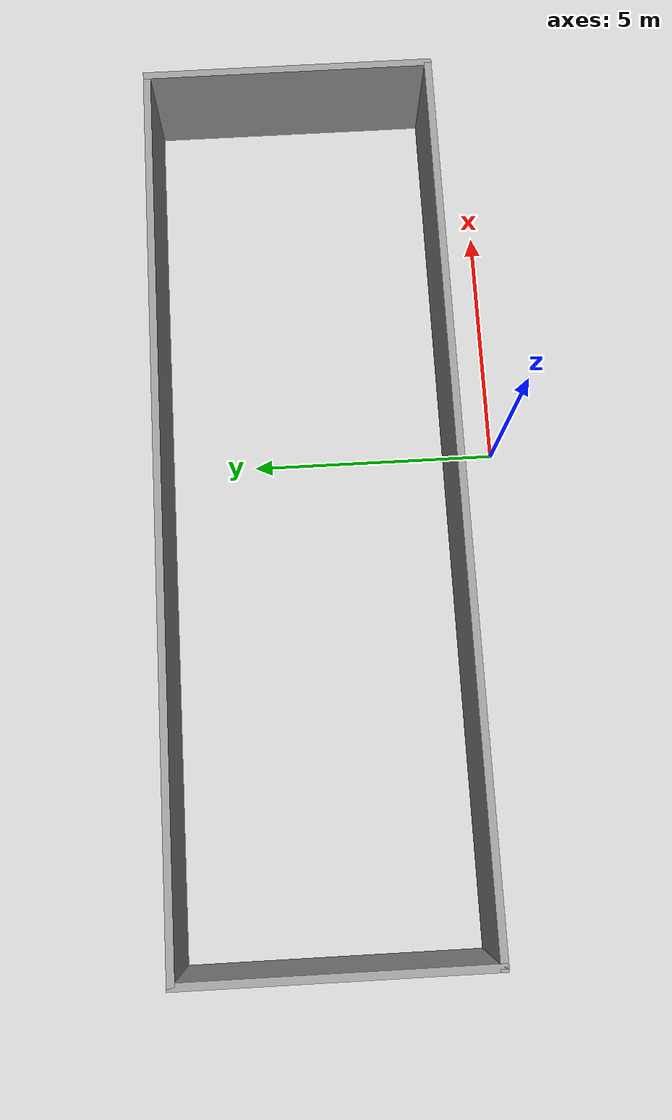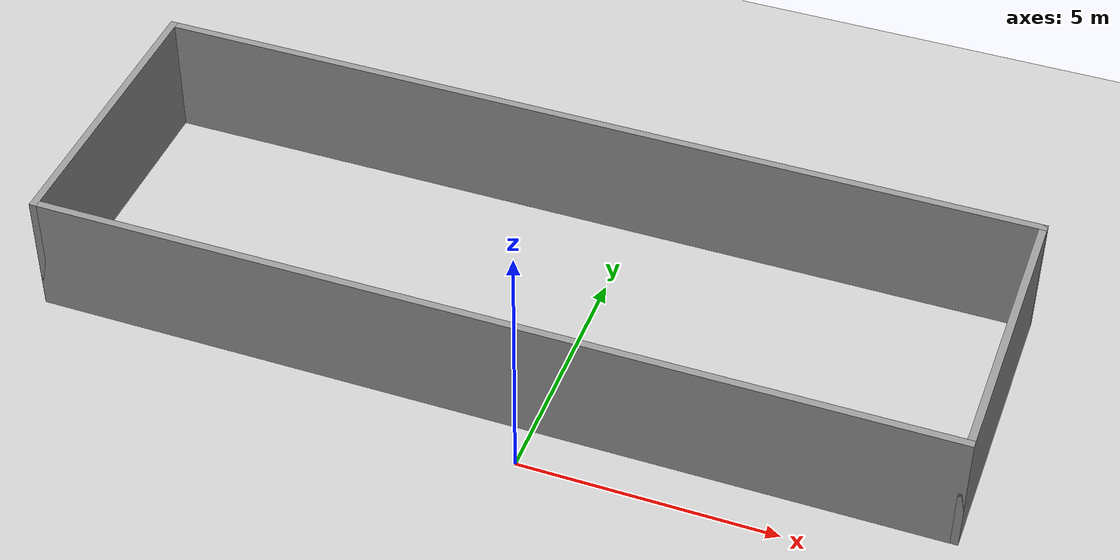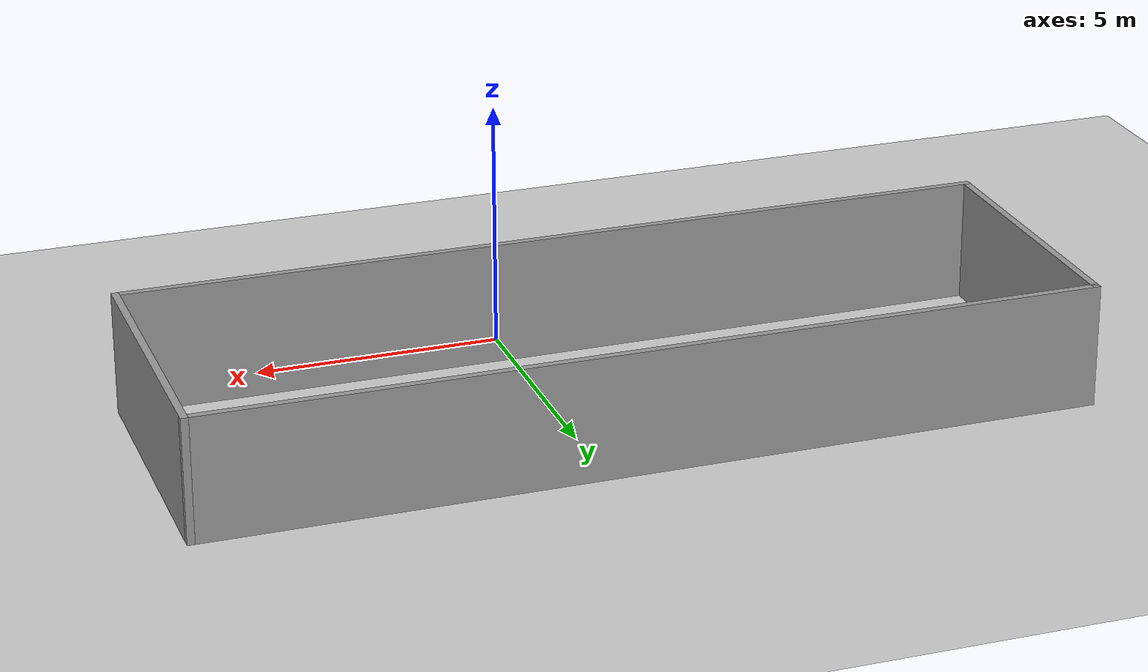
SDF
<sdf version='1.6'>
  <world name='minimal'>
    <light name='sun' type='directional'>
      <cast_shadows>1</cast_shadows>
      <pose frame=''>0 0 10 0 -0 0</pose>
      <diffuse>0.8 0.8 0.8 1</diffuse>
      <specular>0.2 0.2 0.2 1</specular>
      <attenuation>
        <range>1000</range>
        <constant>0.9</constant>
        <linear>0.01</linear>
        <quadratic>0.001</quadratic>
      </attenuation>
      <direction>-0.5 0.1 -0.9</direction>
    </light>

    <model name='ground_plane'>
      <static>1</static>
      <link name='link'>
        <collision name='collision'>
          <geometry>
            <plane>
              <normal>0 0 1</normal>
              <size>100 100</size>
            </plane>
          </geometry>
          <surface>
            <friction>
              <ode>
                <mu>100</mu>
                <mu2>50</mu2>
              </ode>
              <torsional>
                <ode/>
              </torsional>
            </friction>
            <contact>
              <ode/>
            </contact>
            <bounce/>
          </surface>
          <max_contacts>10</max_contacts>
        </collision>
        <visual name='visual'>
          <cast_shadows>0</cast_shadows>
          <geometry>
            <plane>
              <normal>0 0 1</normal>
              <size>100 100</size>
            </plane>
          </geometry>
          <material>
            <script>
              <uri>file://media/materials/scripts/gazebo.material</uri>
              <name>Gazebo/Grey</name>
            </script>
          </material>
        </visual>
        <self_collide>0</self_collide>
        <enable_wind>0</enable_wind>
        <kinematic>0</kinematic>
      </link>
    </model>

    <model name='18X6_wall'>
      <pose frame=''>-1.02014 3.87509 0 0 -0 0</pose>
      <link name='Wall_1'>
        <collision name='Wall_1_Collision'>
          <geometry>
            <box>
              <size>18 0.15 2.5</size>
            </box>
          </geometry>
          <pose frame=''>0 0 1.25 0 -0 0</pose>
          <max_contacts>10</max_contacts>
          <surface>
            <contact>
              <ode/>
            </contact>
            <bounce/>
            <friction>
              <torsional>
                <ode/>
              </torsional>
              <ode/>
            </friction>
          </surface>
        </collision>
        <visual name='Wall_1_Visual'>
          <pose frame=''>0 0 1.25 0 -0 0</pose>
          <geometry>
            <box>
              <size>18 0.15 2.5</size>
            </box>
          </geometry>
          <material>
            <script>
              <uri>file://media/materials/scripts/gazebo.material</uri>
              <name>Gazebo/Grey</name>
            </script>
            <ambient>1 1 1 1</ambient>
          </material>
          <meta>
            <layer>0</layer>
          </meta>
        </visual>
        <pose frame=''>0 -2.925 0 0 -0 0</pose>
        <self_collide>0</self_collide>
        <enable_wind>0</enable_wind>
        <kinematic>0</kinematic>
      </link>
      <link name='Wall_4'>
        <collision name='Wall_4_Collision'>
          <geometry>
            <box>
              <size>6 0.15 2.5</size>
            </box>
          </geometry>
          <pose frame=''>0 0 1.25 0 -0 0</pose>
          <max_contacts>10</max_contacts>
          <surface>
            <contact>
              <ode/>
            </contact>
            <bounce/>
            <friction>
              <torsional>
                <ode/>
              </torsional>
              <ode/>
            </friction>
          </surface>
        </collision>
        <visual name='Wall_4_Visual'>
          <pose frame=''>0 0 1.25 0 -0 0</pose>
          <geometry>
            <box>
              <size>6 0.15 2.5</size>
            </box>
          </geometry>
          <material>
            <script>
              <uri>file://media/materials/scripts/gazebo.material</uri>
              <name>Gazebo/Grey</name>
            </script>
            <ambient>1 1 1 1</ambient>
          </material>
          <meta>
            <layer>0</layer>
          </meta>
        </visual>
        <pose frame=''>8.925 0 0 0 -0 1.5708</pose>
        <self_collide>0</self_collide>
        <enable_wind>0</enable_wind>
        <kinematic>0</kinematic>
      </link>
      <link name='Wall_5'>
        <collision name='Wall_5_Collision'>
          <geometry>
            <box>
              <size>18 0.15 2.5</size>
            </box>
          </geometry>
          <pose frame=''>0 0 1.25 0 -0 0</pose>
          <max_contacts>10</max_contacts>
          <surface>
            <contact>
              <ode/>
            </contact>
            <bounce/>
            <friction>
              <torsional>
                <ode/>
              </torsional>
              <ode/>
            </friction>
          </surface>
        </collision>
        <visual name='Wall_5_Visual'>
          <pose frame=''>0 0 1.25 0 -0 0</pose>
          <geometry>
            <box>
              <size>18 0.15 2.5</size>
            </box>
          </geometry>
          <material>
            <script>
              <uri>file://media/materials/scripts/gazebo.material</uri>
              <name>Gazebo/Grey</name>
            </script>
            <ambient>1 1 1 1</ambient>
          </material>
          <meta>
            <layer>0</layer>
          </meta>
        </visual>
        <pose frame=''>0 2.925 0 0 -0 3.14159</pose>
        <self_collide>0</self_collide>
        <enable_wind>0</enable_wind>
        <kinematic>0</kinematic>
      </link>
      <link name='Wall_6'>
        <collision name='Wall_6_Collision'>
          <geometry>
            <box>
              <size>6 0.15 2.5</size>
            </box>
          </geometry>
          <pose frame=''>0 0 1.25 0 -0 0</pose>
          <max_contacts>10</max_contacts>
          <surface>
            <contact>
              <ode/>
            </contact>
            <bounce/>
            <friction>
              <torsional>
                <ode/>
              </torsional>
              <ode/>
            </friction>
          </surface>
        </collision>
        <visual name='Wall_6_Visual'>
          <pose frame=''>0 0 1.25 0 -0 0</pose>
          <geometry>
            <box>
              <size>6 0.15 2.5</size>
            </box>
          </geometry>
          <material>
            <script>
              <uri>file://media/materials/scripts/gazebo.material</uri>
              <name>Gazebo/Grey</name>
            </script>
            <ambient>1 1 1 1</ambient>
          </material>
          <meta>
            <layer>0</layer>
          </meta>
        </visual>
        <pose frame=''>-8.925 0 0 0 -0 -1.5708</pose>
        <self_collide>0</self_collide>
        <enable_wind>0</enable_wind>
        <kinematic>0</kinematic>
      </link>
      <static>1</static>
    </model>

  </world>
</sdf>
